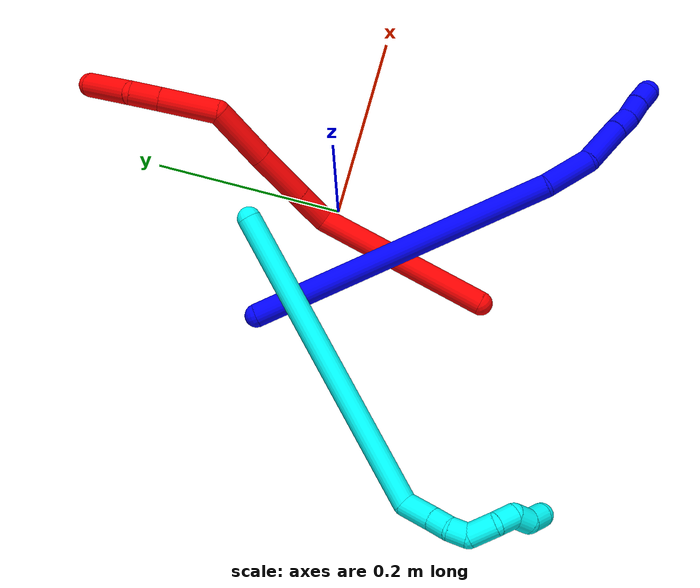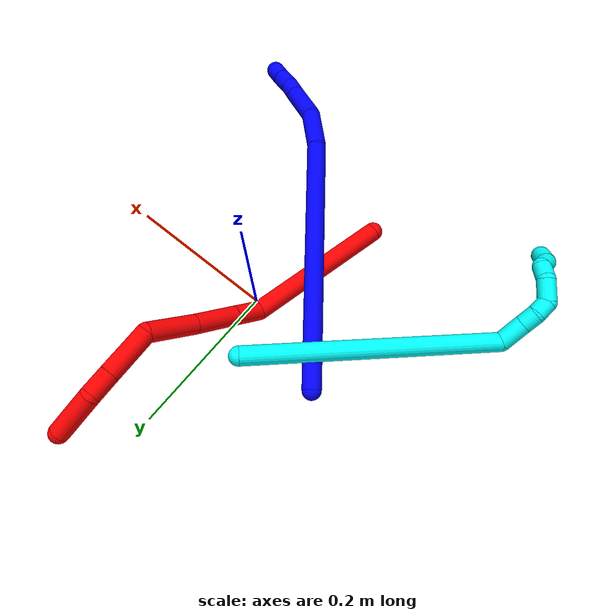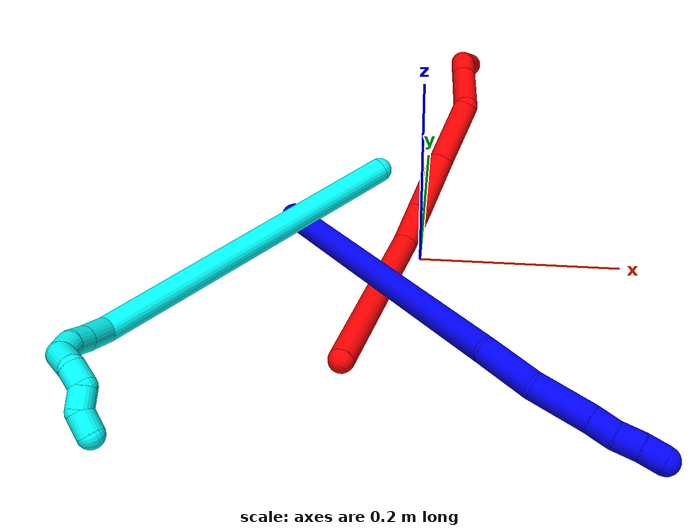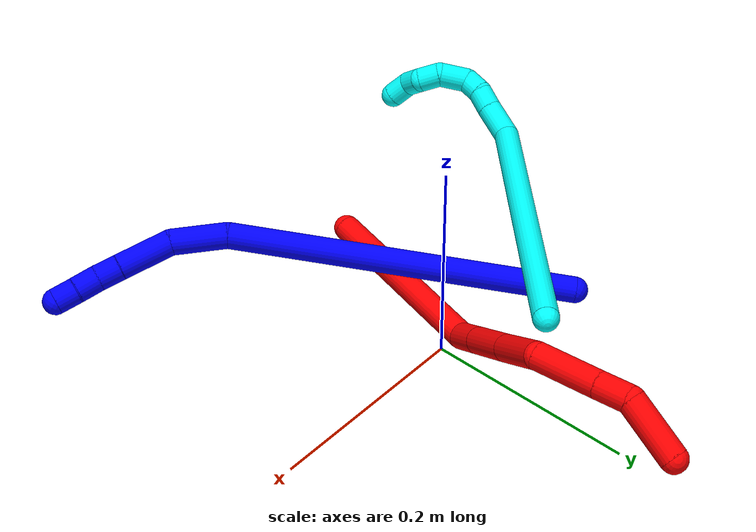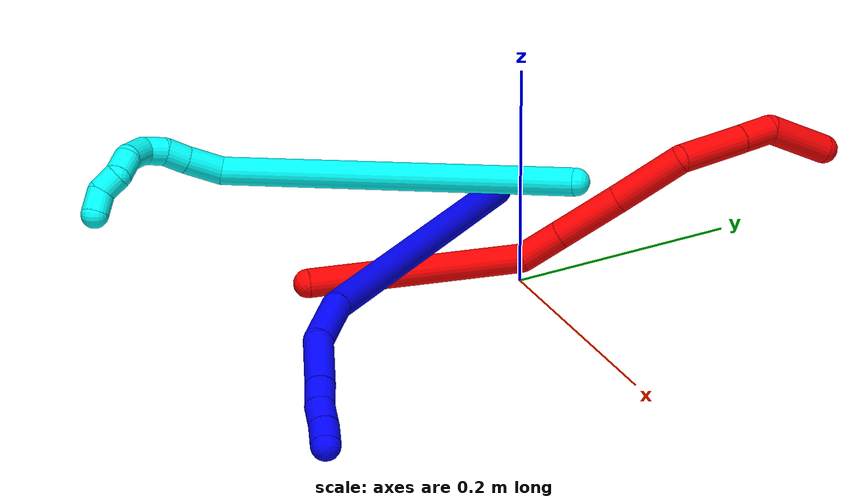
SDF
<sdf version="1.7">
 <world name="default">
  <model name="1">
   <static>0</static>
   <link name="1">
    <collision name="collision-cylinder-e_1_1_4">
     <pose>0.047956 -0.038329 0.152147 0.246785 0.296631 0.037057</pose>
     <geometry><cylinder><radius>0.0125</radius><length>0.328131</length></cylinder></geometry>
     <surface>
      <friction><ode><mu>1.16</mu><mu2>1.16</mu2><slip1>0</slip1><slip2>0</slip2></ode></friction>
      <contact><ode><kp>1e+06</kp><kd>1</kd><max_vel>0</max_vel><min_depth>0.001</min_depth></ode></contact>
     </surface>
    </collision>
    <visual name="visual-cylinder-e_1_1_4">
     <pose>0.047956 -0.038329 0.152147 0.246785 0.296631 0.037057</pose>
     <geometry><cylinder><radius>0.0125</radius><length>0.328131</length></cylinder></geometry>
     <material><ambient>0 0 1 1</ambient></material>
    </visual>
    <collision name="collision-cylinder-e_2_4_5">
     <pose>0.109444 -0.085693 0.325374 0.404904 0.533 0.111954</pose>
     <geometry><cylinder><radius>0.0125</radius><length>0.053259</length></cylinder></geometry>
     <surface>
      <friction><ode><mu>1.16</mu><mu2>1.16</mu2><slip1>0</slip1><slip2>0</slip2></ode></friction>
      <contact><ode><kp>1e+06</kp><kd>1</kd><max_vel>0</max_vel><min_depth>0.001</min_depth></ode></contact>
     </surface>
    </collision>
    <visual name="visual-cylinder-e_2_4_5">
     <pose>0.109444 -0.085693 0.325374 0.404904 0.533 0.111954</pose>
     <geometry><cylinder><radius>0.0125</radius><length>0.053259</length></cylinder></geometry>
     <material><ambient>0 0 1 1</ambient></material>
    </visual>
    <collision name="collision-cylinder-e_3_5_6">
     <pose>0.142946 -0.103121 0.360806 0.529217 0.876585 0.252646</pose>
     <geometry><cylinder><radius>0.0125</radius><length>0.051971</length></cylinder></geometry>
     <surface>
      <friction><ode><mu>1.16</mu><mu2>1.16</mu2><slip1>0</slip1><slip2>0</slip2></ode></friction>
      <contact><ode><kp>1e+06</kp><kd>1</kd><max_vel>0</max_vel><min_depth>0.001</min_depth></ode></contact>
     </surface>
    </collision>
    <visual name="visual-cylinder-e_3_5_6">
     <pose>0.142946 -0.103121 0.360806 0.529217 0.876585 0.252646</pose>
     <geometry><cylinder><radius>0.0125</radius><length>0.051971</length></cylinder></geometry>
     <material><ambient>0 0 1 1</ambient></material>
    </visual>
    <collision name="collision-cylinder-e_4_6_7">
     <pose>0.17138 -0.115883 0.381367 0.613027 0.83948 0.280616</pose>
     <geometry><cylinder><radius>0.0125</radius><length>0.022739</length></cylinder></geometry>
     <surface>
      <friction><ode><mu>1.16</mu><mu2>1.16</mu2><slip1>0</slip1><slip2>0</slip2></ode></friction>
      <contact><ode><kp>1e+06</kp><kd>1</kd><max_vel>0</max_vel><min_depth>0.001</min_depth></ode></contact>
     </surface>
    </collision>
    <visual name="visual-cylinder-e_4_6_7">
     <pose>0.17138 -0.115883 0.381367 0.613027 0.83948 0.280616</pose>
     <geometry><cylinder><radius>0.0125</radius><length>0.022739</length></cylinder></geometry>
     <material><ambient>0 0 1 1</ambient></material>
    </visual>
    <collision name="collision-cylinder-e_5_7_8">
     <pose>0.189362 -0.122951 0.39329 0.441394 0.984857 0.239582</pose>
     <geometry><cylinder><radius>0.0125</radius><length>0.02285</length></cylinder></geometry>
     <surface>
      <friction><ode><mu>1.16</mu><mu2>1.16</mu2><slip1>0</slip1><slip2>0</slip2></ode></friction>
      <contact><ode><kp>1e+06</kp><kd>1</kd><max_vel>0</max_vel><min_depth>0.001</min_depth></ode></contact>
     </surface>
    </collision>
    <visual name="visual-cylinder-e_5_7_8">
     <pose>0.189362 -0.122951 0.39329 0.441394 0.984857 0.239582</pose>
     <geometry><cylinder><radius>0.0125</radius><length>0.02285</length></cylinder></geometry>
     <material><ambient>0 0 1 1</ambient></material>
    </visual>
    <collision name="collision-cylinder-e_6_8_2">
     <pose>0.207225 -0.129045 0.404445 0.557817 0.915363 0.280265</pose>
     <geometry><cylinder><radius>0.0125</radius><length>0.021049</length></cylinder></geometry>
     <surface>
      <friction><ode><mu>1.16</mu><mu2>1.16</mu2><slip1>0</slip1><slip2>0</slip2></ode></friction>
      <contact><ode><kp>1e+06</kp><kd>1</kd><max_vel>0</max_vel><min_depth>0.001</min_depth></ode></contact>
     </surface>
    </collision>
    <visual name="visual-cylinder-e_6_8_2">
     <pose>0.207225 -0.129045 0.404445 0.557817 0.915363 0.280265</pose>
     <geometry><cylinder><radius>0.0125</radius><length>0.021049</length></cylinder></geometry>
     <material><ambient>0 0 1 1</ambient></material>
    </visual>
    <collision name="collision-sphere-2">
     <pose>0.215569 -0.132441 0.409887 0 -0 0</pose>
     <geometry><sphere><radius>0.0125</radius></sphere></geometry>
     <surface>
      <friction><ode><mu>1.16</mu><mu2>1.16</mu2><slip1>0</slip1><slip2>0</slip2></ode></friction>
      <contact><ode><kp>1e+06</kp><kd>1</kd><max_vel>0</max_vel><min_depth>0.001</min_depth></ode></contact>
     </surface>
    </collision>
    <visual name="visual-sphere-2">
     <pose>0.215569 -0.132441 0.409887 0 -0 0</pose>
     <geometry><sphere><radius>0.0125</radius></sphere></geometry>
     <material><ambient>0 0 1 1</ambient></material>
    </visual>
    <collision name="collision-sphere-4">
     <pose>0.095913 -0.076658 0.304293 0 -0 0</pose>
     <geometry><sphere><radius>0.0125</radius></sphere></geometry>
     <surface>
      <friction><ode><mu>1.16</mu><mu2>1.16</mu2><slip1>0</slip1><slip2>0</slip2></ode></friction>
      <contact><ode><kp>1e+06</kp><kd>1</kd><max_vel>0</max_vel><min_depth>0.001</min_depth></ode></contact>
     </surface>
    </collision>
    <visual name="visual-sphere-4">
     <pose>0.095913 -0.076658 0.304293 0 -0 0</pose>
     <geometry><sphere><radius>0.0125</radius></sphere></geometry>
     <material><ambient>0 0 1 1</ambient></material>
    </visual>
    <collision name="collision-sphere-1">
     <geometry><sphere><radius>0.0125</radius></sphere></geometry>
     <surface>
      <friction><ode><mu>1.16</mu><mu2>1.16</mu2><slip1>0</slip1><slip2>0</slip2></ode></friction>
      <contact><ode><kp>1e+06</kp><kd>1</kd><max_vel>0</max_vel><min_depth>0.001</min_depth></ode></contact>
     </surface>
    </collision>
    <visual name="visual-sphere-1">
     <geometry><sphere><radius>0.0125</radius></sphere></geometry>
     <material><ambient>0 0 1 1</ambient></material>
    </visual>
    <collision name="collision-sphere-8">
     <pose>0.198881 -0.12565 0.399003 0 -0 0</pose>
     <geometry><sphere><radius>0.0125</radius></sphere></geometry>
     <surface>
      <friction><ode><mu>1.16</mu><mu2>1.16</mu2><slip1>0</slip1><slip2>0</slip2></ode></friction>
      <contact><ode><kp>1e+06</kp><kd>1</kd><max_vel>0</max_vel><min_depth>0.001</min_depth></ode></contact>
     </surface>
    </collision>
    <visual name="visual-sphere-8">
     <pose>0.198881 -0.12565 0.399003 0 -0 0</pose>
     <geometry><sphere><radius>0.0125</radius></sphere></geometry>
     <material><ambient>0 0 1 1</ambient></material>
    </visual>
    <collision name="collision-sphere-5">
     <pose>0.122975 -0.094728 0.346455 0 -0 0</pose>
     <geometry><sphere><radius>0.0125</radius></sphere></geometry>
     <surface>
      <friction><ode><mu>1.16</mu><mu2>1.16</mu2><slip1>0</slip1><slip2>0</slip2></ode></friction>
      <contact><ode><kp>1e+06</kp><kd>1</kd><max_vel>0</max_vel><min_depth>0.001</min_depth></ode></contact>
     </surface>
    </collision>
    <visual name="visual-sphere-5">
     <pose>0.122975 -0.094728 0.346455 0 -0 0</pose>
     <geometry><sphere><radius>0.0125</radius></sphere></geometry>
     <material><ambient>0 0 1 1</ambient></material>
    </visual>
    <collision name="collision-sphere-6">
     <pose>0.162918 -0.111514 0.375157 0 -0 0</pose>
     <geometry><sphere><radius>0.0125</radius></sphere></geometry>
     <surface>
      <friction><ode><mu>1.16</mu><mu2>1.16</mu2><slip1>0</slip1><slip2>0</slip2></ode></friction>
      <contact><ode><kp>1e+06</kp><kd>1</kd><max_vel>0</max_vel><min_depth>0.001</min_depth></ode></contact>
     </surface>
    </collision>
    <visual name="visual-sphere-6">
     <pose>0.162918 -0.111514 0.375157 0 -0 0</pose>
     <geometry><sphere><radius>0.0125</radius></sphere></geometry>
     <material><ambient>0 0 1 1</ambient></material>
    </visual>
    <collision name="collision-sphere-7">
     <pose>0.179842 -0.120252 0.387578 0 -0 0</pose>
     <geometry><sphere><radius>0.0125</radius></sphere></geometry>
     <surface>
      <friction><ode><mu>1.16</mu><mu2>1.16</mu2><slip1>0</slip1><slip2>0</slip2></ode></friction>
      <contact><ode><kp>1e+06</kp><kd>1</kd><max_vel>0</max_vel><min_depth>0.001</min_depth></ode></contact>
     </surface>
    </collision>
    <visual name="visual-sphere-7">
     <pose>0.179842 -0.120252 0.387578 0 -0 0</pose>
     <geometry><sphere><radius>0.0125</radius></sphere></geometry>
     <material><ambient>0 0 1 1</ambient></material>
    </visual>
    <inertial>
     <pose>0.08316 -0.061322 0.224353 0 -0 0</pose>
     <mass>0.5</mass>
     <inertia>
      <ixx>0.002976</ixx>
      <ixy>0</ixy>
      <ixz>0</ixz>
      <iyy>0.003004</iyy>
      <iyz>0</iyz>
      <izz>-0.000153</izz>
     </inertia>
    </inertial>
   </link>
   <pose>-0.134696 0.0501 0.011632 1.05407 0.316688 0.290437</pose>
  </model>
  <model name="2">
   <static>0</static>
   <link name="2">
    <collision name="collision-cylinder-e_1_1_4">
     <pose>0.028302 0.067066 0.059339 -0.846456 0.306113 -0.138752</pose>
     <geometry><cylinder><radius>0.0125</radius><length>0.187829</length></cylinder></geometry>
     <surface>
      <friction><ode><mu>1.16</mu><mu2>1.16</mu2><slip1>0</slip1><slip2>0</slip2></ode></friction>
      <contact><ode><kp>1e+06</kp><kd>1</kd><max_vel>0</max_vel><min_depth>0.001</min_depth></ode></contact>
     </surface>
    </collision>
    <visual name="visual-cylinder-e_1_1_4">
     <pose>0.028302 0.067066 0.059339 -0.846456 0.306113 -0.138752</pose>
     <geometry><cylinder><radius>0.0125</radius><length>0.187829</length></cylinder></geometry>
     <material><ambient>1 0 0 1</ambient></material>
    </visual>
    <collision name="collision-cylinder-e_2_4_5">
     <pose>0.057374 0.139723 0.137336 -0.291091 0.039547 -0.005798</pose>
     <geometry><cylinder><radius>0.0125</radius><length>0.038988</length></cylinder></geometry>
     <surface>
      <friction><ode><mu>1.16</mu><mu2>1.16</mu2><slip1>0</slip1><slip2>0</slip2></ode></friction>
      <contact><ode><kp>1e+06</kp><kd>1</kd><max_vel>0</max_vel><min_depth>0.001</min_depth></ode></contact>
     </surface>
    </collision>
    <visual name="visual-cylinder-e_2_4_5">
     <pose>0.057374 0.139723 0.137336 -0.291091 0.039547 -0.005798</pose>
     <geometry><cylinder><radius>0.0125</radius><length>0.038988</length></cylinder></geometry>
     <material><ambient>1 0 0 1</ambient></material>
    </visual>
    <collision name="collision-cylinder-e_3_5_6">
     <pose>0.059287 0.153972 0.184291 -0.296955 0.038604 -0.005775</pose>
     <geometry><cylinder><radius>0.0125</radius><length>0.059225</length></cylinder></geometry>
     <surface>
      <friction><ode><mu>1.16</mu><mu2>1.16</mu2><slip1>0</slip1><slip2>0</slip2></ode></friction>
      <contact><ode><kp>1e+06</kp><kd>1</kd><max_vel>0</max_vel><min_depth>0.001</min_depth></ode></contact>
     </surface>
    </collision>
    <visual name="visual-cylinder-e_3_5_6">
     <pose>0.059287 0.153972 0.184291 -0.296955 0.038604 -0.005775</pose>
     <geometry><cylinder><radius>0.0125</radius><length>0.059225</length></cylinder></geometry>
     <material><ambient>1 0 0 1</ambient></material>
    </visual>
    <collision name="collision-cylinder-e_4_6_7">
     <pose>0.061615 0.170822 0.243768 -0.256916 0.036744 -0.004747</pose>
     <geometry><cylinder><radius>0.0125</radius><length>0.064522</length></cylinder></geometry>
     <surface>
      <friction><ode><mu>1.16</mu><mu2>1.16</mu2><slip1>0</slip1><slip2>0</slip2></ode></friction>
      <contact><ode><kp>1e+06</kp><kd>1</kd><max_vel>0</max_vel><min_depth>0.001</min_depth></ode></contact>
     </surface>
    </collision>
    <visual name="visual-cylinder-e_4_6_7">
     <pose>0.061615 0.170822 0.243768 -0.256916 0.036744 -0.004747</pose>
     <geometry><cylinder><radius>0.0125</radius><length>0.064522</length></cylinder></geometry>
     <material><ambient>1 0 0 1</ambient></material>
    </visual>
    <collision name="collision-cylinder-e_5_7_8">
     <pose>0.063912 0.204357 0.291869 -0.982113 0.036454 -0.019495</pose>
     <geometry><cylinder><radius>0.0125</radius><length>0.060985</length></cylinder></geometry>
     <surface>
      <friction><ode><mu>1.16</mu><mu2>1.16</mu2><slip1>0</slip1><slip2>0</slip2></ode></friction>
      <contact><ode><kp>1e+06</kp><kd>1</kd><max_vel>0</max_vel><min_depth>0.001</min_depth></ode></contact>
     </surface>
    </collision>
    <visual name="visual-cylinder-e_5_7_8">
     <pose>0.063912 0.204357 0.291869 -0.982113 0.036454 -0.019495</pose>
     <geometry><cylinder><radius>0.0125</radius><length>0.060985</length></cylinder></geometry>
     <material><ambient>1 0 0 1</ambient></material>
    </visual>
    <collision name="collision-cylinder-e_6_8_9">
     <pose>0.065418 0.242353 0.317221 -0.982987 0.02594 -0.013887</pose>
     <geometry><cylinder><radius>0.0125</radius><length>0.030422</length></cylinder></geometry>
     <surface>
      <friction><ode><mu>1.16</mu><mu2>1.16</mu2><slip1>0</slip1><slip2>0</slip2></ode></friction>
      <contact><ode><kp>1e+06</kp><kd>1</kd><max_vel>0</max_vel><min_depth>0.001</min_depth></ode></contact>
     </surface>
    </collision>
    <visual name="visual-cylinder-e_6_8_9">
     <pose>0.065418 0.242353 0.317221 -0.982987 0.02594 -0.013887</pose>
     <geometry><cylinder><radius>0.0125</radius><length>0.030422</length></cylinder></geometry>
     <material><ambient>1 0 0 1</ambient></material>
    </visual>
    <collision name="collision-cylinder-e_7_9_2">
     <pose>0.079509 0.280026 0.330973 -1.3613 0.491622 -0.400845</pose>
     <geometry><cylinder><radius>0.0125</radius><length>0.05803</length></cylinder></geometry>
     <surface>
      <friction><ode><mu>1.16</mu><mu2>1.16</mu2><slip1>0</slip1><slip2>0</slip2></ode></friction>
      <contact><ode><kp>1e+06</kp><kd>1</kd><max_vel>0</max_vel><min_depth>0.001</min_depth></ode></contact>
     </surface>
    </collision>
    <visual name="visual-cylinder-e_7_9_2">
     <pose>0.079509 0.280026 0.330973 -1.3613 0.491622 -0.400845</pose>
     <geometry><cylinder><radius>0.0125</radius><length>0.05803</length></cylinder></geometry>
     <material><ambient>1 0 0 1</ambient></material>
    </visual>
    <collision name="collision-sphere-2">
     <pose>0.093206 0.305045 0.336292 0 -0 0</pose>
     <geometry><sphere><radius>0.0125</radius></sphere></geometry>
     <surface>
      <friction><ode><mu>1.16</mu><mu2>1.16</mu2><slip1>0</slip1><slip2>0</slip2></ode></friction>
      <contact><ode><kp>1e+06</kp><kd>1</kd><max_vel>0</max_vel><min_depth>0.001</min_depth></ode></contact>
     </surface>
    </collision>
    <visual name="visual-sphere-2">
     <pose>0.093206 0.305045 0.336292 0 -0 0</pose>
     <geometry><sphere><radius>0.0125</radius></sphere></geometry>
     <material><ambient>1 0 0 1</ambient></material>
    </visual>
    <collision name="collision-sphere-9">
     <pose>0.065812 0.255006 0.325653 0 -0 0</pose>
     <geometry><sphere><radius>0.0125</radius></sphere></geometry>
     <surface>
      <friction><ode><mu>1.16</mu><mu2>1.16</mu2><slip1>0</slip1><slip2>0</slip2></ode></friction>
      <contact><ode><kp>1e+06</kp><kd>1</kd><max_vel>0</max_vel><min_depth>0.001</min_depth></ode></contact>
     </surface>
    </collision>
    <visual name="visual-sphere-9">
     <pose>0.065812 0.255006 0.325653 0 -0 0</pose>
     <geometry><sphere><radius>0.0125</radius></sphere></geometry>
     <material><ambient>1 0 0 1</ambient></material>
    </visual>
    <collision name="collision-sphere-4">
     <pose>0.056603 0.134132 0.118677 0 -0 0</pose>
     <geometry><sphere><radius>0.0125</radius></sphere></geometry>
     <surface>
      <friction><ode><mu>1.16</mu><mu2>1.16</mu2><slip1>0</slip1><slip2>0</slip2></ode></friction>
      <contact><ode><kp>1e+06</kp><kd>1</kd><max_vel>0</max_vel><min_depth>0.001</min_depth></ode></contact>
     </surface>
    </collision>
    <visual name="visual-sphere-4">
     <pose>0.056603 0.134132 0.118677 0 -0 0</pose>
     <geometry><sphere><radius>0.0125</radius></sphere></geometry>
     <material><ambient>1 0 0 1</ambient></material>
    </visual>
    <collision name="collision-sphere-1">
     <geometry><sphere><radius>0.0125</radius></sphere></geometry>
     <surface>
      <friction><ode><mu>1.16</mu><mu2>1.16</mu2><slip1>0</slip1><slip2>0</slip2></ode></friction>
      <contact><ode><kp>1e+06</kp><kd>1</kd><max_vel>0</max_vel><min_depth>0.001</min_depth></ode></contact>
     </surface>
    </collision>
    <visual name="visual-sphere-1">
     <geometry><sphere><radius>0.0125</radius></sphere></geometry>
     <material><ambient>1 0 0 1</ambient></material>
    </visual>
    <collision name="collision-sphere-8">
     <pose>0.065023 0.229699 0.308789 0 -0 0</pose>
     <geometry><sphere><radius>0.0125</radius></sphere></geometry>
     <surface>
      <friction><ode><mu>1.16</mu><mu2>1.16</mu2><slip1>0</slip1><slip2>0</slip2></ode></friction>
      <contact><ode><kp>1e+06</kp><kd>1</kd><max_vel>0</max_vel><min_depth>0.001</min_depth></ode></contact>
     </surface>
    </collision>
    <visual name="visual-sphere-8">
     <pose>0.065023 0.229699 0.308789 0 -0 0</pose>
     <geometry><sphere><radius>0.0125</radius></sphere></geometry>
     <material><ambient>1 0 0 1</ambient></material>
    </visual>
    <collision name="collision-sphere-5">
     <pose>0.058145 0.145313 0.155996 0 -0 0</pose>
     <geometry><sphere><radius>0.0125</radius></sphere></geometry>
     <surface>
      <friction><ode><mu>1.16</mu><mu2>1.16</mu2><slip1>0</slip1><slip2>0</slip2></ode></friction>
      <contact><ode><kp>1e+06</kp><kd>1</kd><max_vel>0</max_vel><min_depth>0.001</min_depth></ode></contact>
     </surface>
    </collision>
    <visual name="visual-sphere-5">
     <pose>0.058145 0.145313 0.155996 0 -0 0</pose>
     <geometry><sphere><radius>0.0125</radius></sphere></geometry>
     <material><ambient>1 0 0 1</ambient></material>
    </visual>
    <collision name="collision-sphere-6">
     <pose>0.06043 0.16263 0.212587 0 -0 0</pose>
     <geometry><sphere><radius>0.0125</radius></sphere></geometry>
     <surface>
      <friction><ode><mu>1.16</mu><mu2>1.16</mu2><slip1>0</slip1><slip2>0</slip2></ode></friction>
      <contact><ode><kp>1e+06</kp><kd>1</kd><max_vel>0</max_vel><min_depth>0.001</min_depth></ode></contact>
     </surface>
    </collision>
    <visual name="visual-sphere-6">
     <pose>0.06043 0.16263 0.212587 0 -0 0</pose>
     <geometry><sphere><radius>0.0125</radius></sphere></geometry>
     <material><ambient>1 0 0 1</ambient></material>
    </visual>
    <collision name="collision-sphere-7">
     <pose>0.062801 0.179014 0.274949 0 -0 0</pose>
     <geometry><sphere><radius>0.0125</radius></sphere></geometry>
     <surface>
      <friction><ode><mu>1.16</mu><mu2>1.16</mu2><slip1>0</slip1><slip2>0</slip2></ode></friction>
      <contact><ode><kp>1e+06</kp><kd>1</kd><max_vel>0</max_vel><min_depth>0.001</min_depth></ode></contact>
     </surface>
    </collision>
    <visual name="visual-sphere-7">
     <pose>0.062801 0.179014 0.274949 0 -0 0</pose>
     <geometry><sphere><radius>0.0125</radius></sphere></geometry>
     <material><ambient>1 0 0 1</ambient></material>
    </visual>
    <inertial>
     <pose>0.051082 0.148541 0.179598 0 -0 0</pose>
     <mass>0.5</mass>
     <inertia>
      <ixx>0.000546</ixx>
      <ixy>0</ixy>
      <ixz>0</ixz>
      <iyy>0.000397</iyy>
      <iyz>0</iyz>
      <izz>-0.000604</izz>
     </inertia>
    </inertial>
   </link>
   <pose>-0.061381 -0.171384 0.011498 -0.504599 0.603842 0.130147</pose>
  </model>
  <model name="3">
   <static>0</static>
   <link name="3">
    <collision name="collision-cylinder-e_1_1_4">
     <pose>-0.004537 -0.011425 0.164679 0.069264 -0.027478 -0.000952</pose>
     <geometry><cylinder><radius>0.0125</radius><length>0.330275</length></cylinder></geometry>
     <surface>
      <friction><ode><mu>1.16</mu><mu2>1.16</mu2><slip1>0</slip1><slip2>0</slip2></ode></friction>
      <contact><ode><kp>1e+06</kp><kd>1</kd><max_vel>0</max_vel><min_depth>0.001</min_depth></ode></contact>
     </surface>
    </collision>
    <visual name="visual-cylinder-e_1_1_4">
     <pose>-0.004537 -0.011425 0.164679 0.069264 -0.027478 -0.000952</pose>
     <geometry><cylinder><radius>0.0125</radius><length>0.330275</length></cylinder></geometry>
     <material><ambient>0.003922 1 0.996078 1</ambient></material>
    </visual>
    <collision name="collision-cylinder-e_2_4_5">
     <pose>-0.001831 -0.014619 0.34321 -0.536089 0.422467 -0.117653</pose>
     <geometry><cylinder><radius>0.0125</radius><length>0.03533</length></cylinder></geometry>
     <surface>
      <friction><ode><mu>1.16</mu><mu2>1.16</mu2><slip1>0</slip1><slip2>0</slip2></ode></friction>
      <contact><ode><kp>1e+06</kp><kd>1</kd><max_vel>0</max_vel><min_depth>0.001</min_depth></ode></contact>
     </surface>
    </collision>
    <visual name="visual-cylinder-e_2_4_5">
     <pose>-0.001831 -0.014619 0.34321 -0.536089 0.422467 -0.117653</pose>
     <geometry><cylinder><radius>0.0125</radius><length>0.03533</length></cylinder></geometry>
     <material><ambient>0.003922 1 0.996078 1</ambient></material>
    </visual>
    <collision name="collision-cylinder-e_3_5_6">
     <pose>0.009366 -0.000868 0.365161 -0.598392 0.383398 -0.119589</pose>
     <geometry><cylinder><radius>0.0125</radius><length>0.021141</length></cylinder></geometry>
     <surface>
      <friction><ode><mu>1.16</mu><mu2>1.16</mu2><slip1>0</slip1><slip2>0</slip2></ode></friction>
      <contact><ode><kp>1e+06</kp><kd>1</kd><max_vel>0</max_vel><min_depth>0.001</min_depth></ode></contact>
     </surface>
    </collision>
    <visual name="visual-cylinder-e_3_5_6">
     <pose>0.009366 -0.000868 0.365161 -0.598392 0.383398 -0.119589</pose>
     <geometry><cylinder><radius>0.0125</radius><length>0.021141</length></cylinder></geometry>
     <material><ambient>0.003922 1 0.996078 1</ambient></material>
    </visual>
    <collision name="collision-cylinder-e_4_6_7">
     <pose>0.01917 0.007432 0.380981 -0.345345 0.619381 -0.111502</pose>
     <geometry><cylinder><radius>0.0125</radius><length>0.020153</length></cylinder></geometry>
     <surface>
      <friction><ode><mu>1.16</mu><mu2>1.16</mu2><slip1>0</slip1><slip2>0</slip2></ode></friction>
      <contact><ode><kp>1e+06</kp><kd>1</kd><max_vel>0</max_vel><min_depth>0.001</min_depth></ode></contact>
     </surface>
    </collision>
    <visual name="visual-cylinder-e_4_6_7">
     <pose>0.01917 0.007432 0.380981 -0.345345 0.619381 -0.111502</pose>
     <geometry><cylinder><radius>0.0125</radius><length>0.020153</length></cylinder></geometry>
     <material><ambient>0.003922 1 0.996078 1</ambient></material>
    </visual>
    <collision name="collision-cylinder-e_5_7_8">
     <pose>0.039156 0.013829 0.390536 -1.10181 1.29128 -0.86693</pose>
     <geometry><cylinder><radius>0.0125</radius><length>0.029414</length></cylinder></geometry>
     <surface>
      <friction><ode><mu>1.16</mu><mu2>1.16</mu2><slip1>0</slip1><slip2>0</slip2></ode></friction>
      <contact><ode><kp>1e+06</kp><kd>1</kd><max_vel>0</max_vel><min_depth>0.001</min_depth></ode></contact>
     </surface>
    </collision>
    <visual name="visual-cylinder-e_5_7_8">
     <pose>0.039156 0.013829 0.390536 -1.10181 1.29128 -0.86693</pose>
     <geometry><cylinder><radius>0.0125</radius><length>0.029414</length></cylinder></geometry>
     <material><ambient>0.003922 1 0.996078 1</ambient></material>
    </visual>
    <collision name="collision-cylinder-e_6_8_9">
     <pose>0.063553 0.014247 0.39337 1.2679 1.25487 0.979625</pose>
     <geometry><cylinder><radius>0.0125</radius><length>0.021591</length></cylinder></geometry>
     <surface>
      <friction><ode><mu>1.16</mu><mu2>1.16</mu2><slip1>0</slip1><slip2>0</slip2></ode></friction>
      <contact><ode><kp>1e+06</kp><kd>1</kd><max_vel>0</max_vel><min_depth>0.001</min_depth></ode></contact>
     </surface>
    </collision>
    <visual name="visual-cylinder-e_6_8_9">
     <pose>0.063553 0.014247 0.39337 1.2679 1.25487 0.979625</pose>
     <geometry><cylinder><radius>0.0125</radius><length>0.021591</length></cylinder></geometry>
     <material><ambient>0.003922 1 0.996078 1</ambient></material>
    </visual>
    <collision name="collision-cylinder-e_7_9_10">
     <pose>0.079453 0.005327 0.40076 0.730019 0.581707 0.227787</pose>
     <geometry><cylinder><radius>0.0125</radius><length>0.020525</length></cylinder></geometry>
     <surface>
      <friction><ode><mu>1.16</mu><mu2>1.16</mu2><slip1>0</slip1><slip2>0</slip2></ode></friction>
      <contact><ode><kp>1e+06</kp><kd>1</kd><max_vel>0</max_vel><min_depth>0.001</min_depth></ode></contact>
     </surface>
    </collision>
    <visual name="visual-cylinder-e_7_9_10">
     <pose>0.079453 0.005327 0.40076 0.730019 0.581707 0.227787</pose>
     <geometry><cylinder><radius>0.0125</radius><length>0.020525</length></cylinder></geometry>
     <material><ambient>0.003922 1 0.996078 1</ambient></material>
    </visual>
    <collision name="collision-cylinder-e_8_10_2">
     <pose>0.093371 -0.007269 0.407845 1.47003 0.87507 0.800114</pose>
     <geometry><cylinder><radius>0.0125</radius><length>0.021571</length></cylinder></geometry>
     <surface>
      <friction><ode><mu>1.16</mu><mu2>1.16</mu2><slip1>0</slip1><slip2>0</slip2></ode></friction>
      <contact><ode><kp>1e+06</kp><kd>1</kd><max_vel>0</max_vel><min_depth>0.001</min_depth></ode></contact>
     </surface>
    </collision>
    <visual name="visual-cylinder-e_8_10_2">
     <pose>0.093371 -0.007269 0.407845 1.47003 0.87507 0.800114</pose>
     <geometry><cylinder><radius>0.0125</radius><length>0.021571</length></cylinder></geometry>
     <material><ambient>0.003922 1 0.996078 1</ambient></material>
    </visual>
    <collision name="collision-sphere-2">
     <pose>0.101649 -0.014147 0.40854 0 -0 0</pose>
     <geometry><sphere><radius>0.0125</radius></sphere></geometry>
     <surface>
      <friction><ode><mu>1.16</mu><mu2>1.16</mu2><slip1>0</slip1><slip2>0</slip2></ode></friction>
      <contact><ode><kp>1e+06</kp><kd>1</kd><max_vel>0</max_vel><min_depth>0.001</min_depth></ode></contact>
     </surface>
    </collision>
    <visual name="visual-sphere-2">
     <pose>0.101649 -0.014147 0.40854 0 -0 0</pose>
     <geometry><sphere><radius>0.0125</radius></sphere></geometry>
     <material><ambient>0.003922 1 0.996078 1</ambient></material>
    </visual>
    <collision name="collision-sphere-10">
     <pose>0.085092 -0.000391 0.407149 0 -0 0</pose>
     <geometry><sphere><radius>0.0125</radius></sphere></geometry>
     <surface>
      <friction><ode><mu>1.16</mu><mu2>1.16</mu2><slip1>0</slip1><slip2>0</slip2></ode></friction>
      <contact><ode><kp>1e+06</kp><kd>1</kd><max_vel>0</max_vel><min_depth>0.001</min_depth></ode></contact>
     </surface>
    </collision>
    <visual name="visual-sphere-10">
     <pose>0.085092 -0.000391 0.407149 0 -0 0</pose>
     <geometry><sphere><radius>0.0125</radius></sphere></geometry>
     <material><ambient>0.003922 1 0.996078 1</ambient></material>
    </visual>
    <collision name="collision-sphere-9">
     <pose>0.073814 0.011046 0.394371 0 -0 0</pose>
     <geometry><sphere><radius>0.0125</radius></sphere></geometry>
     <surface>
      <friction><ode><mu>1.16</mu><mu2>1.16</mu2><slip1>0</slip1><slip2>0</slip2></ode></friction>
      <contact><ode><kp>1e+06</kp><kd>1</kd><max_vel>0</max_vel><min_depth>0.001</min_depth></ode></contact>
     </surface>
    </collision>
    <visual name="visual-sphere-9">
     <pose>0.073814 0.011046 0.394371 0 -0 0</pose>
     <geometry><sphere><radius>0.0125</radius></sphere></geometry>
     <material><ambient>0.003922 1 0.996078 1</ambient></material>
    </visual>
    <collision name="collision-sphere-4">
     <pose>-0.009074 -0.022849 0.329358 0 -0 0</pose>
     <geometry><sphere><radius>0.0125</radius></sphere></geometry>
     <surface>
      <friction><ode><mu>1.16</mu><mu2>1.16</mu2><slip1>0</slip1><slip2>0</slip2></ode></friction>
      <contact><ode><kp>1e+06</kp><kd>1</kd><max_vel>0</max_vel><min_depth>0.001</min_depth></ode></contact>
     </surface>
    </collision>
    <visual name="visual-sphere-4">
     <pose>-0.009074 -0.022849 0.329358 0 -0 0</pose>
     <geometry><sphere><radius>0.0125</radius></sphere></geometry>
     <material><ambient>0.003922 1 0.996078 1</ambient></material>
    </visual>
    <collision name="collision-sphere-1">
     <geometry><sphere><radius>0.0125</radius></sphere></geometry>
     <surface>
      <friction><ode><mu>1.16</mu><mu2>1.16</mu2><slip1>0</slip1><slip2>0</slip2></ode></friction>
      <contact><ode><kp>1e+06</kp><kd>1</kd><max_vel>0</max_vel><min_depth>0.001</min_depth></ode></contact>
     </surface>
    </collision>
    <visual name="visual-sphere-1">
     <geometry><sphere><radius>0.0125</radius></sphere></geometry>
     <material><ambient>0.003922 1 0.996078 1</ambient></material>
    </visual>
    <collision name="collision-sphere-8">
     <pose>0.053292 0.017448 0.39237 0 -0 0</pose>
     <geometry><sphere><radius>0.0125</radius></sphere></geometry>
     <surface>
      <friction><ode><mu>1.16</mu><mu2>1.16</mu2><slip1>0</slip1><slip2>0</slip2></ode></friction>
      <contact><ode><kp>1e+06</kp><kd>1</kd><max_vel>0</max_vel><min_depth>0.001</min_depth></ode></contact>
     </surface>
    </collision>
    <visual name="visual-sphere-8">
     <pose>0.053292 0.017448 0.39237 0 -0 0</pose>
     <geometry><sphere><radius>0.0125</radius></sphere></geometry>
     <material><ambient>0.003922 1 0.996078 1</ambient></material>
    </visual>
    <collision name="collision-sphere-5">
     <pose>0.005412 -0.00639 0.357062 0 -0 0</pose>
     <geometry><sphere><radius>0.0125</radius></sphere></geometry>
     <surface>
      <friction><ode><mu>1.16</mu><mu2>1.16</mu2><slip1>0</slip1><slip2>0</slip2></ode></friction>
      <contact><ode><kp>1e+06</kp><kd>1</kd><max_vel>0</max_vel><min_depth>0.001</min_depth></ode></contact>
     </surface>
    </collision>
    <visual name="visual-sphere-5">
     <pose>0.005412 -0.00639 0.357062 0 -0 0</pose>
     <geometry><sphere><radius>0.0125</radius></sphere></geometry>
     <material><ambient>0.003922 1 0.996078 1</ambient></material>
    </visual>
    <collision name="collision-sphere-6">
     <pose>0.01332 0.004655 0.373261 0 -0 0</pose>
     <geometry><sphere><radius>0.0125</radius></sphere></geometry>
     <surface>
      <friction><ode><mu>1.16</mu><mu2>1.16</mu2><slip1>0</slip1><slip2>0</slip2></ode></friction>
      <contact><ode><kp>1e+06</kp><kd>1</kd><max_vel>0</max_vel><min_depth>0.001</min_depth></ode></contact>
     </surface>
    </collision>
    <visual name="visual-sphere-6">
     <pose>0.01332 0.004655 0.373261 0 -0 0</pose>
     <geometry><sphere><radius>0.0125</radius></sphere></geometry>
     <material><ambient>0.003922 1 0.996078 1</ambient></material>
    </visual>
    <collision name="collision-sphere-7">
     <pose>0.025019 0.01021 0.388702 0 -0 0</pose>
     <geometry><sphere><radius>0.0125</radius></sphere></geometry>
     <surface>
      <friction><ode><mu>1.16</mu><mu2>1.16</mu2><slip1>0</slip1><slip2>0</slip2></ode></friction>
      <contact><ode><kp>1e+06</kp><kd>1</kd><max_vel>0</max_vel><min_depth>0.001</min_depth></ode></contact>
     </surface>
    </collision>
    <visual name="visual-sphere-7">
     <pose>0.025019 0.01021 0.388702 0 -0 0</pose>
     <geometry><sphere><radius>0.0125</radius></sphere></geometry>
     <material><ambient>0.003922 1 0.996078 1</ambient></material>
    </visual>
    <inertial>
     <pose>0.01038 -0.006983 0.237833 0 -0 0</pose>
     <mass>0.5</mass>
     <inertia>
      <ixx>0.003029</ixx>
      <ixy>0</ixy>
      <ixz>0</ixz>
      <iyy>0.003018</iyy>
      <iyz>0</iyz>
      <izz>0.000311</izz>
     </inertia>
    </inertial>
   </link>
   <pose>-0.047371 0.080367 0.053488 1.62988 0.027435 -0.767369</pose>
  </model>
 </world>
</sdf>
